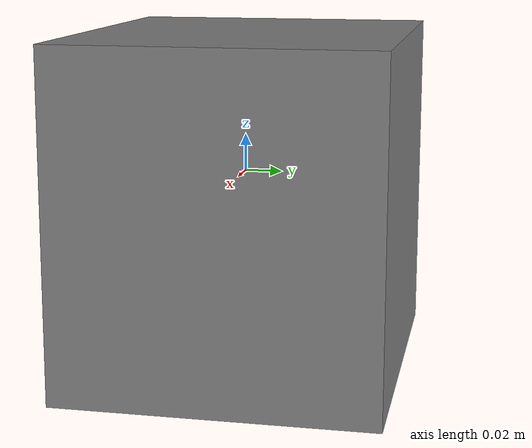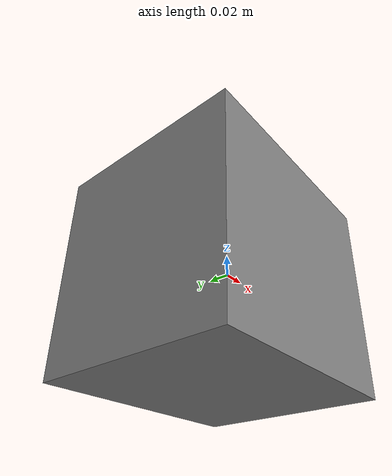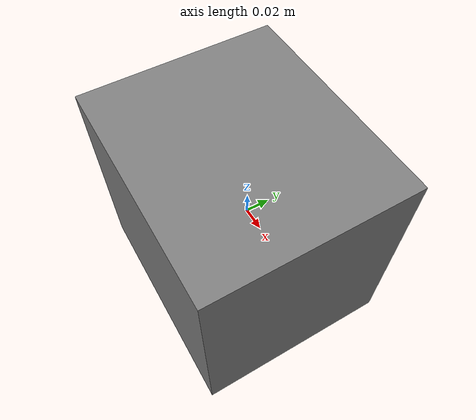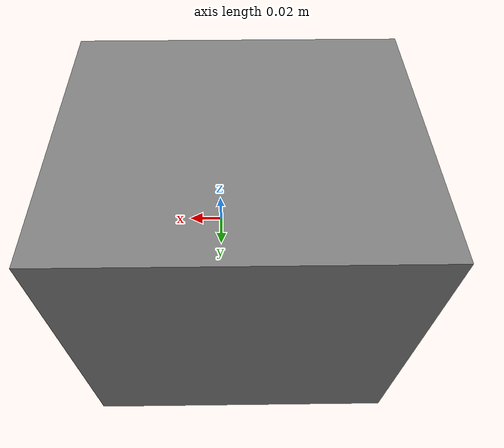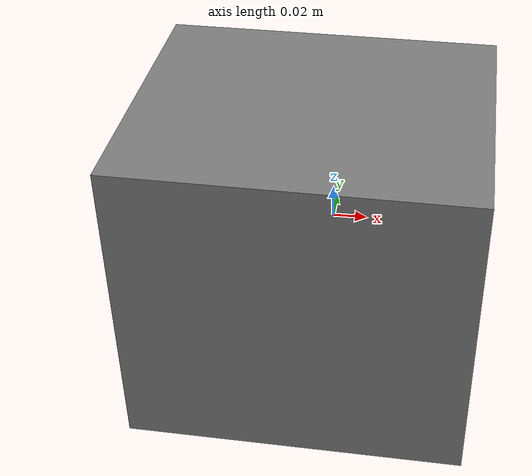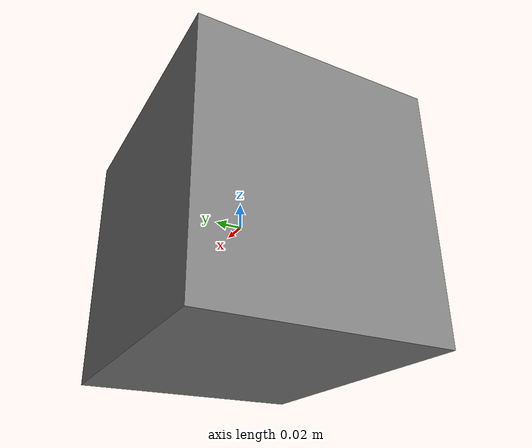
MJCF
<mujoco model="mesh_to_primitive">
<asset>
    <!-- Original mesh, if you still want it for visuals -->
    <mesh name="geom0_vismesh" file="base_link.stl" scale="0.001 0.001 0.001"/>
  </asset>
  <worldbody>
    <body name="body0" pos="-0.012098465 2.778244e-05 -0.018053123">
      <geom name="geom0" type="box" size="0.10016119 0.086072918 0.092582512"/>
    </body>
  </worldbody>
</mujoco>
